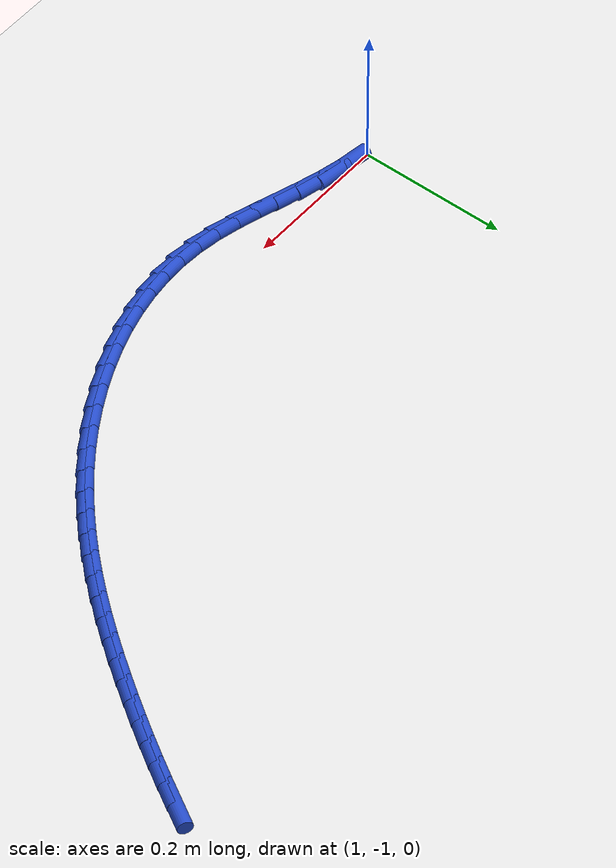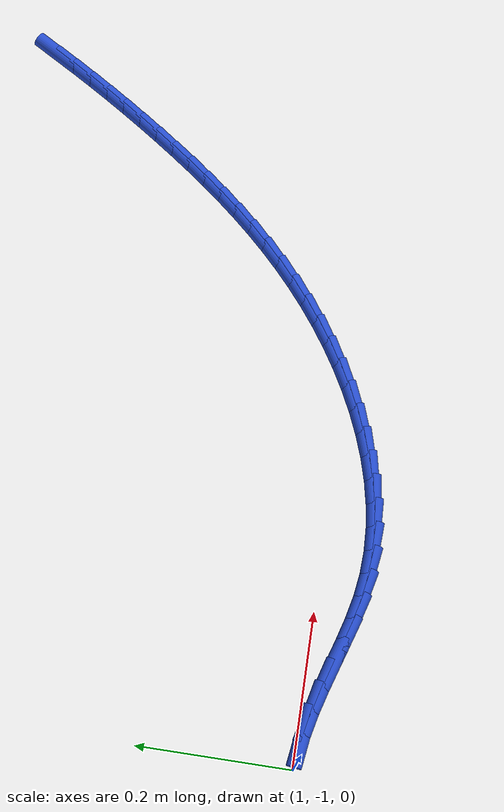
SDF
<sdf version="1.6">
 <world name="default">
  <model name="ground_plane">
   <static>1</static>
   <link name="link">
    <collision name="collision">
     <geometry><plane><normal>0 0 1</normal><size>100 100</size></plane></geometry>
     <surface><friction><ode><mu>100</mu><mu2>50</mu2></ode></friction></surface>
    </collision>
    <visual name="visual">
     <cast_shadows>0</cast_shadows>
     <geometry><plane><normal>0 0 1</normal><size>100 100</size></plane></geometry>
     <material>
      <script><uri>file://media/materials/scripts/gazebo.material</uri><name>Gazebo/WhiteGlow</name></script>
     </material>
    </visual>
   </link>
  </model>
  <model name="line">
   <link name="link_122">
    <pose>1.9232960676830384 -0.5446295947253676 0.01 0 1.57 1.0343999620465703</pose>
    <collision name="collision">
     <geometry><cylinder><radius>0.01</radius><length>0.08</length></cylinder></geometry>
    </collision>
    <visual name="visual">
     <material>
      <script><name>Gazebo/Blue</name><uri>file://media/materials/scripts/gazebo.material</uri></script>
     </material>
     <geometry><cylinder><radius>0.01</radius><length>0.08</length></cylinder></geometry>
    </visual>
   </link>
   <link name="link_123">
    <pose>1.9072420472898381 -0.5716319410367804 0.01 0 1.57 1.019720770390046</pose>
    <collision name="collision">
     <geometry><cylinder><radius>0.01</radius><length>0.08</length></cylinder></geometry>
    </collision>
    <visual name="visual">
     <material>
      <script><name>Gazebo/Blue</name><uri>file://media/materials/scripts/gazebo.material</uri></script>
     </material>
     <geometry><cylinder><radius>0.01</radius><length>0.08</length></cylinder></geometry>
    </visual>
   </link>
   <link name="link_124">
    <pose>1.8908490709023256 -0.5983051408058427 0.01 0 1.57 1.0053192552346606</pose>
    <collision name="collision">
     <geometry><cylinder><radius>0.01</radius><length>0.08</length></cylinder></geometry>
    </collision>
    <visual name="visual">
     <material>
      <script><name>Gazebo/Blue</name><uri>file://media/materials/scripts/gazebo.material</uri></script>
     </material>
     <geometry><cylinder><radius>0.01</radius><length>0.08</length></cylinder></geometry>
    </visual>
   </link>
   <link name="link_125">
    <pose>1.8741144946125128 -0.6246751734928775 0.01 0 1.57 0.991235910792468</pose>
    <collision name="collision">
     <geometry><cylinder><radius>0.01</radius><length>0.08</length></cylinder></geometry>
    </collision>
    <visual name="visual">
     <material>
      <script><name>Gazebo/Blue</name><uri>file://media/materials/scripts/gazebo.material</uri></script>
     </material>
     <geometry><cylinder><radius>0.01</radius><length>0.08</length></cylinder></geometry>
    </visual>
   </link>
   <link name="link_126">
    <pose>1.857035674512415 -0.6507680185582063 0.01 0 1.57 0.9775092995726458</pose>
    <collision name="collision">
     <geometry><cylinder><radius>0.01</radius><length>0.08</length></cylinder></geometry>
    </collision>
    <visual name="visual">
     <material>
      <script><name>Gazebo/Blue</name><uri>file://media/materials/scripts/gazebo.material</uri></script>
     </material>
     <geometry><cylinder><radius>0.01</radius><length>0.08</length></cylinder></geometry>
    </visual>
   </link>
   <link name="link_127">
    <pose>1.8396099666940458 -0.6766096554621515 0.01 0 1.57 0.9641370993475741</pose>
    <collision name="collision">
     <geometry><cylinder><radius>0.01</radius><length>0.08</length></cylinder></geometry>
    </collision>
    <visual name="visual">
     <material>
      <script><name>Gazebo/Blue</name><uri>file://media/materials/scripts/gazebo.material</uri></script>
     </material>
     <geometry><cylinder><radius>0.01</radius><length>0.08</length></cylinder></geometry>
    </visual>
   </link>
   <link name="link_128">
    <pose>1.8218339588988774 -0.7022250597516123 0.01 0 1.57 0.9496687622876968</pose>
    <collision name="collision">
     <geometry><cylinder><radius>0.01</radius><length>0.08</length></cylinder></geometry>
    </collision>
    <visual name="visual">
     <material>
      <script><name>Gazebo/Blue</name><uri>file://media/materials/scripts/gazebo.material</uri></script>
     </material>
     <geometry><cylinder><radius>0.01</radius><length>0.08</length></cylinder></geometry>
    </visual>
   </link>
   <link name="link_129">
    <pose>1.8036747999224987 -0.7276007425599478 0.01 0 1.57 0.9322004362362815</pose>
    <collision name="collision">
     <geometry><cylinder><radius>0.01</radius><length>0.08</length></cylinder></geometry>
    </collision>
    <visual name="visual">
     <material>
      <script><name>Gazebo/Blue</name><uri>file://media/materials/scripts/gazebo.material</uri></script>
     </material>
     <geometry><cylinder><radius>0.01</radius><length>0.08</length></cylinder></geometry>
    </visual>
   </link>
   <link name="link_130">
    <pose>1.7850616436356168 -0.7526735715139595 0.01 0 1.57 0.9116062110429755</pose>
    <collision name="collision">
     <geometry><cylinder><radius>0.01</radius><length>0.08</length></cylinder></geometry>
    </collision>
    <visual name="visual">
     <material>
      <script><name>Gazebo/Blue</name><uri>file://media/materials/scripts/gazebo.material</uri></script>
     </material>
     <geometry><cylinder><radius>0.01</radius><length>0.08</length></cylinder></geometry>
    </visual>
   </link>
   <link name="link_131">
    <pose>1.7659211293691846 -0.7773771287866375 0.01 0 1.57 0.8878945139936315</pose>
    <collision name="collision">
     <geometry><cylinder><radius>0.01</radius><length>0.08</length></cylinder></geometry>
    </collision>
    <visual name="visual">
     <material>
      <script><name>Gazebo/Blue</name><uri>file://media/materials/scripts/gazebo.material</uri></script>
     </material>
     <geometry><cylinder><radius>0.01</radius><length>0.08</length></cylinder></geometry>
    </visual>
   </link>
   <link name="link_132">
    <pose>1.7461798964541535 -0.8016449965509718 0.01 0 1.57 0.8610877608965819</pose>
    <collision name="collision">
     <geometry><cylinder><radius>0.01</radius><length>0.08</length></cylinder></geometry>
    </collision>
    <visual name="visual">
     <material>
      <script><name>Gazebo/Blue</name><uri>file://media/materials/scripts/gazebo.material</uri></script>
     </material>
     <geometry><cylinder><radius>0.01</radius><length>0.08</length></cylinder></geometry>
    </visual>
   </link>
   <link name="link_133">
    <pose>1.7257645842214764 -0.825410756979951 0.01 0 1.57 0.8312290687878161</pose>
    <collision name="collision">
     <geometry><cylinder><radius>0.01</radius><length>0.08</length></cylinder></geometry>
    </collision>
    <visual name="visual">
     <material>
      <script><name>Gazebo/Blue</name><uri>file://media/materials/scripts/gazebo.material</uri></script>
     </material>
     <geometry><cylinder><radius>0.01</radius><length>0.08</length></cylinder></geometry>
    </visual>
   </link>
   <link name="link_134">
    <pose>1.7046018320021077 -0.8486079922465664 0.01 0 1.57 0.7983894275943367</pose>
    <collision name="collision">
     <geometry><cylinder><radius>0.01</radius><length>0.08</length></cylinder></geometry>
    </collision>
    <visual name="visual">
     <material>
      <script><name>Gazebo/Blue</name><uri>file://media/materials/scripts/gazebo.material</uri></script>
     </material>
     <geometry><cylinder><radius>0.01</radius><length>0.08</length></cylinder></geometry>
    </visual>
   </link>
   <link name="link_135">
    <pose>1.6826182791269988 -0.8711702845238073 0.01 0 1.57 0.7626749067148052</pose>
    <collision name="collision">
     <geometry><cylinder><radius>0.01</radius><length>0.08</length></cylinder></geometry>
    </collision>
    <visual name="visual">
     <material>
      <script><name>Gazebo/Blue</name><uri>file://media/materials/scripts/gazebo.material</uri></script>
     </material>
     <geometry><cylinder><radius>0.01</radius><length>0.08</length></cylinder></geometry>
    </visual>
   </link>
   <link name="link_136">
    <pose>1.6597405649271018 -0.8930312159846631 0.01 0 1.57 0.7242332973817455</pose>
    <collision name="collision">
     <geometry><cylinder><radius>0.01</radius><length>0.08</length></cylinder></geometry>
    </collision>
    <visual name="visual">
     <material>
      <script><name>Gazebo/Blue</name><uri>file://media/materials/scripts/gazebo.material</uri></script>
     </material>
     <geometry><cylinder><radius>0.01</radius><length>0.08</length></cylinder></geometry>
    </visual>
   </link>
   <link name="link_137">
    <pose>1.6358953287333702 -0.9141243688021246 0.01 0 1.57 0.6832594338320863</pose>
    <collision name="collision">
     <geometry><cylinder><radius>0.01</radius><length>0.08</length></cylinder></geometry>
    </collision>
    <visual name="visual">
     <material>
      <script><name>Gazebo/Blue</name><uri>file://media/materials/scripts/gazebo.material</uri></script>
     </material>
     <geometry><cylinder><radius>0.01</radius><length>0.08</length></cylinder></geometry>
    </visual>
   </link>
   <link name="link_138">
    <pose>1.6110092098767559 -0.9343833251491814 0.01 0 1.57 0.6400193165568738</pose>
    <collision name="collision">
     <geometry><cylinder><radius>0.01</radius><length>0.08</length></cylinder></geometry>
    </collision>
    <visual name="visual">
     <material>
      <script><name>Gazebo/Blue</name><uri>file://media/materials/scripts/gazebo.material</uri></script>
     </material>
     <geometry><cylinder><radius>0.01</radius><length>0.08</length></cylinder></geometry>
    </visual>
   </link>
   <link name="link_139">
    <pose>1.585013109934058 -0.9537393412971701 0.01 0 1.57 0.5951070173464594</pose>
    <collision name="collision">
     <geometry><cylinder><radius>0.01</radius><length>0.08</length></cylinder></geometry>
    </collision>
    <visual name="visual">
     <material>
      <script><name>Gazebo/Blue</name><uri>file://media/materials/scripts/gazebo.material</uri></script>
     </material>
     <geometry><cylinder><radius>0.01</radius><length>0.08</length></cylinder></geometry>
    </visual>
   </link>
   <link name="link_140">
    <pose>1.5579343337599334 -0.9720710663822663 0.01 0 1.57 0.5485296761845577</pose>
    <collision name="collision">
     <geometry><cylinder><radius>0.01</radius><length>0.08</length></cylinder></geometry>
    </collision>
    <visual name="visual">
     <material>
      <script><name>Gazebo/Blue</name><uri>file://media/materials/scripts/gazebo.material</uri></script>
     </material>
     <geometry><cylinder><radius>0.01</radius><length>0.08</length></cylinder></geometry>
    </visual>
   </link>
   <link name="link_141">
    <pose>1.529895693418448 -0.9892050313887938 0.01 0 1.57 0.499676526731833</pose>
    <collision name="collision">
     <geometry><cylinder><radius>0.01</radius><length>0.08</length></cylinder></geometry>
    </collision>
    <visual name="visual">
     <material>
      <script><name>Gazebo/Blue</name><uri>file://media/materials/scripts/gazebo.material</uri></script>
     </material>
     <geometry><cylinder><radius>0.01</radius><length>0.08</length></cylinder></geometry>
    </visual>
   </link>
   <link name="link_142">
    <pose>1.5010240840009264 -1.0049655391987593 0.01 0 1.57 0.44790639814166106</pose>
    <collision name="collision">
     <geometry><cylinder><radius>0.01</radius><length>0.08</length></cylinder></geometry>
    </collision>
    <visual name="visual">
     <material>
      <script><name>Gazebo/Blue</name><uri>file://media/materials/scripts/gazebo.material</uri></script>
     </material>
     <geometry><cylinder><radius>0.01</radius><length>0.08</length></cylinder></geometry>
    </visual>
   </link>
   <link name="link_143">
    <pose>1.471446400598692 -1.0191768926941696 0.01 0 1.57 0.3925609711734118</pose>
    <collision name="collision">
     <geometry><cylinder><radius>0.01</radius><length>0.08</length></cylinder></geometry>
    </collision>
    <visual name="visual">
     <material>
      <script><name>Gazebo/Blue</name><uri>file://media/materials/scripts/gazebo.material</uri></script>
     </material>
     <geometry><cylinder><radius>0.01</radius><length>0.08</length></cylinder></geometry>
    </visual>
   </link>
   <link name="link_144">
    <pose>1.4412895383030695 -1.031663394757031 0.01 0 1.57 0.33296653162289236</pose>
    <collision name="collision">
     <geometry><cylinder><radius>0.01</radius><length>0.08</length></cylinder></geometry>
    </collision>
    <visual name="visual">
     <material>
      <script><name>Gazebo/Blue</name><uri>file://media/materials/scripts/gazebo.material</uri></script>
     </material>
     <geometry><cylinder><radius>0.01</radius><length>0.08</length></cylinder></geometry>
    </visual>
   </link>
   <link name="link_145">
    <pose>1.4106803922053814 -1.042249348269351 0.01 0 1.57 0.26844767733825775</pose>
    <collision name="collision">
     <geometry><cylinder><radius>0.01</radius><length>0.08</length></cylinder></geometry>
    </collision>
    <visual name="visual">
     <material>
      <script><name>Gazebo/Blue</name><uri>file://media/materials/scripts/gazebo.material</uri></script>
     </material>
     <geometry><cylinder><radius>0.01</radius><length>0.08</length></cylinder></geometry>
    </visual>
   </link>
   <link name="link_146">
    <pose>1.3797458573969539 -1.0507590561131348 0.01 0 1.57 0.19835772643306376</pose>
    <collision name="collision">
     <geometry><cylinder><radius>0.01</radius><length>0.08</length></cylinder></geometry>
    </collision>
    <visual name="visual">
     <material>
      <script><name>Gazebo/Blue</name><uri>file://media/materials/scripts/gazebo.material</uri></script>
     </material>
     <geometry><cylinder><radius>0.01</radius><length>0.08</length></cylinder></geometry>
    </visual>
   </link>
   <link name="link_147">
    <pose>1.3486128289691097 -1.0570168211703903 0.01 0 1.57 0.12213133429909075</pose>
    <collision name="collision">
     <geometry><cylinder><radius>0.01</radius><length>0.08</length></cylinder></geometry>
    </collision>
    <visual name="visual">
     <material>
      <script><name>Gazebo/Blue</name><uri>file://media/materials/scripts/gazebo.material</uri></script>
     </material>
     <geometry><cylinder><radius>0.01</radius><length>0.08</length></cylinder></geometry>
    </visual>
   </link>
   <link name="link_148">
    <pose>1.317408202013173 -1.0608469463231238 0.01 0 1.57 0.03936374911709052</pose>
    <collision name="collision">
     <geometry><cylinder><radius>0.01</radius><length>0.08</length></cylinder></geometry>
    </collision>
    <visual name="visual">
     <material>
      <script><name>Gazebo/Blue</name><uri>file://media/materials/scripts/gazebo.material</uri></script>
     </material>
     <geometry><cylinder><radius>0.01</radius><length>0.08</length></cylinder></geometry>
    </visual>
   </link>
   <link name="link_149">
    <pose>1.2862588716204677 -1.0620737344533417 0.01 0 1.57 -0.05008366885936771</pose>
    <collision name="collision">
     <geometry><cylinder><radius>0.01</radius><length>0.08</length></cylinder></geometry>
    </collision>
    <visual name="visual">
     <material>
      <script><name>Gazebo/Blue</name><uri>file://media/materials/scripts/gazebo.material</uri></script>
     </material>
     <geometry><cylinder><radius>0.01</radius><length>0.08</length></cylinder></geometry>
    </visual>
   </link>
   <link name="link_150">
    <pose>1.2552917328823179 -1.0605214884430507 0.01 0 1.57 -0.1448428861553124</pose>
    <collision name="collision">
     <geometry><cylinder><radius>0.01</radius><length>0.08</length></cylinder></geometry>
    </collision>
    <visual name="visual">
     <material>
      <script><name>Gazebo/Blue</name><uri>file://media/materials/scripts/gazebo.material</uri></script>
     </material>
     <geometry><cylinder><radius>0.01</radius><length>0.08</length></cylinder></geometry>
    </visual>
   </link>
   <link name="link_151">
    <pose>1.2246255628811258 -1.056048386947333 0.01 0 1.57 -0.22629792665387738</pose>
    <collision name="collision">
     <geometry><cylinder><radius>0.01</radius><length>0.08</length></cylinder></geometry>
    </collision>
    <visual name="visual">
     <material>
      <script><name>Gazebo/Blue</name><uri>file://media/materials/scripts/gazebo.material</uri></script>
     </material>
     <geometry><cylinder><radius>0.01</radius><length>0.08</length></cylinder></geometry>
    </visual>
   </link>
   <link name="link_152">
    <pose>1.1942492795473052 -1.0490545000145433 0.01 0 1.57 -0.27981949359542574</pose>
    <collision name="collision">
     <geometry><cylinder><radius>0.01</radius><length>0.08</length></cylinder></geometry>
    </collision>
    <visual name="visual">
     <material>
      <script><name>Gazebo/Blue</name><uri>file://media/materials/scripts/gazebo.material</uri></script>
     </material>
     <geometry><cylinder><radius>0.01</radius><length>0.08</length></cylinder></geometry>
    </visual>
   </link>
   <link name="link_153">
    <pose>1.1640473624560776 -1.0403757102248232 0.01 0 1.57 -0.30574817999089043</pose>
    <collision name="collision">
     <geometry><cylinder><radius>0.01</radius><length>0.08</length></cylinder></geometry>
    </collision>
    <visual name="visual">
     <material>
      <script><name>Gazebo/Blue</name><uri>file://media/materials/scripts/gazebo.material</uri></script>
     </material>
     <geometry><cylinder><radius>0.01</radius><length>0.08</length></cylinder></geometry>
    </visual>
   </link>
   <link name="link_154">
    <pose>1.1339013330932253 -1.030860244018434 0.01 0 1.57 -0.30480545331793757</pose>
    <collision name="collision">
     <geometry><cylinder><radius>0.01</radius><length>0.08</length></cylinder></geometry>
    </collision>
    <visual name="visual">
     <material>
      <script><name>Gazebo/Blue</name><uri>file://media/materials/scripts/gazebo.material</uri></script>
     </material>
     <geometry><cylinder><radius>0.01</radius><length>0.08</length></cylinder></geometry>
    </visual>
   </link>
   <link name="link_155">
    <pose>1.1036927129445313 -1.021356327835637 0.01 0 1.57 -0.2771240859309552</pose>
    <collision name="collision">
     <geometry><cylinder><radius>0.01</radius><length>0.08</length></cylinder></geometry>
    </collision>
    <visual name="visual">
     <material>
      <script><name>Gazebo/Blue</name><uri>file://media/materials/scripts/gazebo.material</uri></script>
     </material>
     <geometry><cylinder><radius>0.01</radius><length>0.08</length></cylinder></geometry>
    </visual>
   </link>
   <link name="link_156">
    <pose>1.0733030234957786 -1.0127121881166938 0.01 0 1.57 -0.2222774981035446</pose>
    <collision name="collision">
     <geometry><cylinder><radius>0.01</radius><length>0.08</length></cylinder></geometry>
    </collision>
    <visual name="visual">
     <material>
      <script><name>Gazebo/Blue</name><uri>file://media/materials/scripts/gazebo.material</uri></script>
     </material>
     <geometry><cylinder><radius>0.01</radius><length>0.08</length></cylinder></geometry>
    </visual>
   </link>
   <link name="link_157">
    <pose>1.04261378623275 -1.005776051301866 0.01 0 1.57 -0.1398806265048154</pose>
    <collision name="collision">
     <geometry><cylinder><radius>0.01</radius><length>0.08</length></cylinder></geometry>
    </collision>
    <visual name="visual">
     <material>
      <script><name>Gazebo/Blue</name><uri>file://media/materials/scripts/gazebo.material</uri></script>
     </material>
     <geometry><cylinder><radius>0.01</radius><length>0.08</length></cylinder></geometry>
    </visual>
   </link>
  </model>
 </world>
</sdf>
